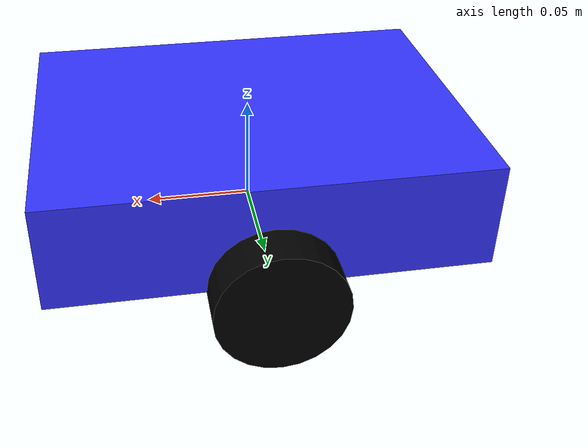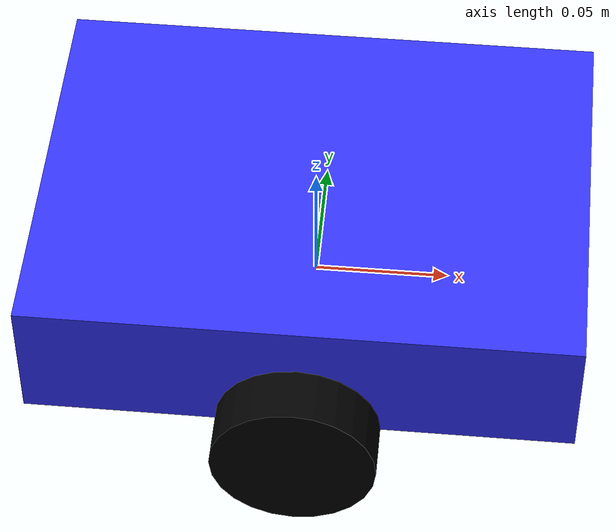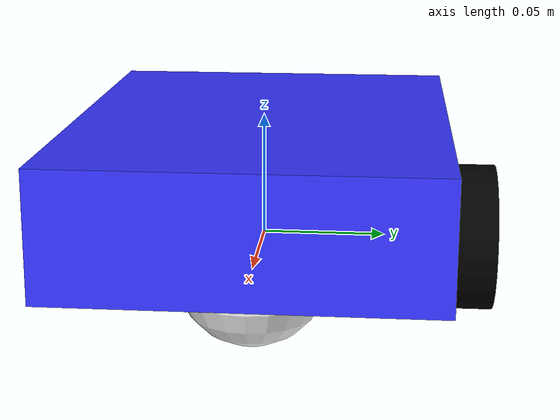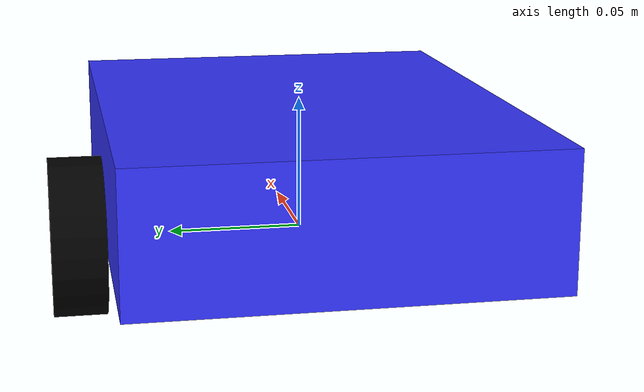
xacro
<?xml version="1.0"?>
<robot name="my_diff_bot" xmlns:xacro="http://www.ros.org/wiki/xacro">

    <xacro:include filename="robot_core.xacro" />
    <xacro:include filename="robot_gazebo.xacro" />

</robot>

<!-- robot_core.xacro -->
<robot name="my_diff_bot" xmlns:xacro="http://www.ros.org/wiki/xacro">

    <!-- ================= INERTIA MACROS ================= -->
    <xacro:macro name="inertial_box" params="mass x y z *origin">
        <inertial>
            <xacro:insert_block name="origin"/>
            <mass value="${mass}" />
            <inertia ixx="${(1/12) * mass * (y*y+z*z)}" ixy="0.0" ixz="0.0"
                     iyy="${(1/12) * mass * (x*x+z*z)}" iyz="0.0"
                     izz="${(1/12) * mass * (x*x+y*y)}" />
        </inertial>
    </xacro:macro>

    <xacro:macro name="inertial_cylinder" params="mass length radius *origin">
        <inertial>
            <xacro:insert_block name="origin"/>
            <mass value="${mass}" />
            <inertia ixx="${(1/12) * mass * (3*radius*radius + length*length)}" ixy="0.0" ixz="0.0"
                     iyy="${(1/12) * mass * (3*radius*radius + length*length)}" iyz="0.0"
                     izz="${(1/2) * mass * (radius*radius)}" />
        </inertial>
    </xacro:macro>

    <xacro:macro name="inertial_sphere" params="mass radius *origin">
        <inertial>
            <xacro:insert_block name="origin"/>
            <mass value="${mass}" />
            <inertia ixx="${(2/5) * mass * (radius*radius)}" ixy="0.0" ixz="0.0"
                     iyy="${(2/5) * mass * (radius*radius)}" iyz="0.0"
                     izz="${(2/5) * mass * (radius*radius)}" />
        </inertial>
    </xacro:macro>

    <!-- ================= MATERIALS (RViz এর জন্য) ================= -->
    <material name="white">
        <color rgba="1 1 1 1" />
    </material>
    <material name="blue">
        <color rgba="0.2 0.2 1 1" />
    </material>
    <material name="black">
        <color rgba="0 0 0 1" />
    </material>

    <!-- ================= BASE LINK ================= -->
    <link name="base_link">
    </link>

    <!-- ================= CHASSIS ================= -->
    <joint name="chassis_joint" type="fixed">
        <parent link="base_link"/>
        <child link="chassis"/>
        <origin xyz="-0.1 0 0"/>
    </joint>

    <link name="chassis">
        <visual>
            <origin xyz="0.1 0 0.025"/>
            <geometry>
                <box size="0.2 0.15 0.05"/>
            </geometry>
            <material name="blue"/>
        </visual>
        <collision>
            <origin xyz="0.1 0 0.025"/>
            <geometry>
                <box size="0.2 0.15 0.05"/>
            </geometry>
        </collision>
        <xacro:inertial_box mass="0.5" x="0.2" y="0.15" z="0.05">
            <origin xyz="0.1 0 0.025" rpy="0 0 0"/>
        </xacro:inertial_box>
    </link>
    <gazebo reference="chassis">
        <material>Gazebo/Blue</material>
    </gazebo>

    <!-- ================= LEFT WHEEL ================= -->
    <joint name="left_wheel_joint" type="continuous">
        <parent link="base_link"/>
        <child link="left_wheel"/>
        <origin xyz="0 0.085 0" rpy="-1.5708 0 0"/>
        <axis xyz="0 0 1"/>
    </joint>

    <link name="left_wheel">
        <visual>
            <geometry>
                <cylinder radius="0.03" length="0.02"/>
            </geometry>
            <material name="black"/>
        </visual>
        <collision>
            <geometry>
                <cylinder radius="0.03" length="0.02"/>
            </geometry>
        </collision>
        <xacro:inertial_cylinder mass="0.1" length="0.02" radius="0.03">
            <origin xyz="0 0 0" rpy="0 0 0"/>
        </xacro:inertial_cylinder>
    </link>
    <gazebo reference="left_wheel">
        <material>Gazebo/Black</material>
    </gazebo>

    <!-- ================= RIGHT WHEEL ================= -->
    <joint name="right_wheel_joint" type="continuous">
        <parent link="base_link"/>
        <child link="right_wheel"/>
        <origin xyz="0 -0.085 0" rpy="1.5708 0 0"/>
        <axis xyz="0 0 -1"/>
    </joint>

    <link name="right_wheel">
        <visual>
            <geometry>
                <cylinder radius="0.03" length="0.02"/>
            </geometry>
            <material name="black"/>
        </visual>
        <collision>
            <geometry>
                <cylinder radius="0.03" length="0.02"/>
            </geometry>
        </collision>
        <xacro:inertial_cylinder mass="0.1" length="0.02" radius="0.03">
            <origin xyz="0 0 0" rpy="0 0 0"/>
        </xacro:inertial_cylinder>
    </link>
    <gazebo reference="right_wheel">
        <material>Gazebo/Black</material>
    </gazebo>

    <!-- ================= CASTER WHEEL ================= -->
    <joint name="caster_wheel_joint" type="fixed">
        <parent link="chassis"/>
        <child link="caster_wheel"/>
        <origin xyz="0.15 0 0"/>
    </joint>

    <link name="caster_wheel">
        <visual>
            <geometry>
                <sphere radius="0.03"/>
            </geometry>
            <material name="white"/>
        </visual>
        <collision>
            <geometry>
                <sphere radius="0.03"/>
            </geometry>
        </collision>
        <xacro:inertial_sphere mass="0.1" radius="0.03">
            <origin xyz="0 0 0" rpy="0 0 0"/>
        </xacro:inertial_sphere>
    </link>
    <gazebo reference="caster_wheel">
        <material>Gazebo/White</material>
        <mu1 value="0.0"/>
        <mu2 value="0.0"/>
    </gazebo>

</robot>
